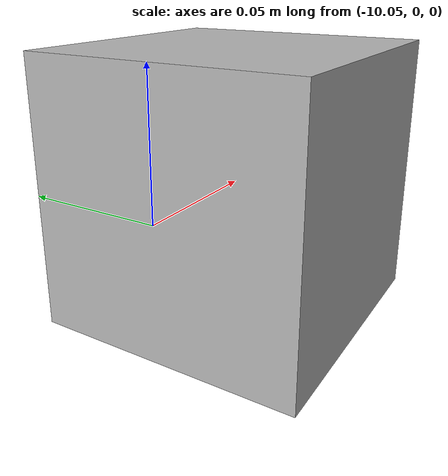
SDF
<?xml version="1.0" ?>
<sdf version="1.6">

<plugin name='gz::sim::systems::ParticleEmitter2' filename='gz-sim-particle-emitter2-system'/>

<model name="light_dust_storm">
  <static>true</static>
  <pose>-10 0 0 0 0 0</pose>
  <link name="dust_link">
    <visual name="visual">
      <geometry>
        <box>
          <size>0.1 0.1 0.1</size>
        </box>
      </geometry>
    </visual>
    <particle_emitter name="emitter" type="box">
      <emitting>true</emitting>
      <size>30 1 1</size>
      <particle_size>0.1 0.1 0.1</particle_size>
      <lifetime>30</lifetime>
      <min_velocity>0.6</min_velocity>
      <max_velocity>3</max_velocity>
      <scale_rate>1</scale_rate>
      <rate>3</rate>
      <material>
        <diffuse>1 1 1</diffuse>
        <specular>1.0 1.0 1.0</specular>
        <pbr>
          <metal>
            <albedo_map>materials/textures/Dust.png</albedo_map>
          </metal>
        </pbr>
      </material>
      <color_range_image>materials/textures/DustColors.png</color_range_image>
    </particle_emitter>
  </link>
</model>

</sdf>
